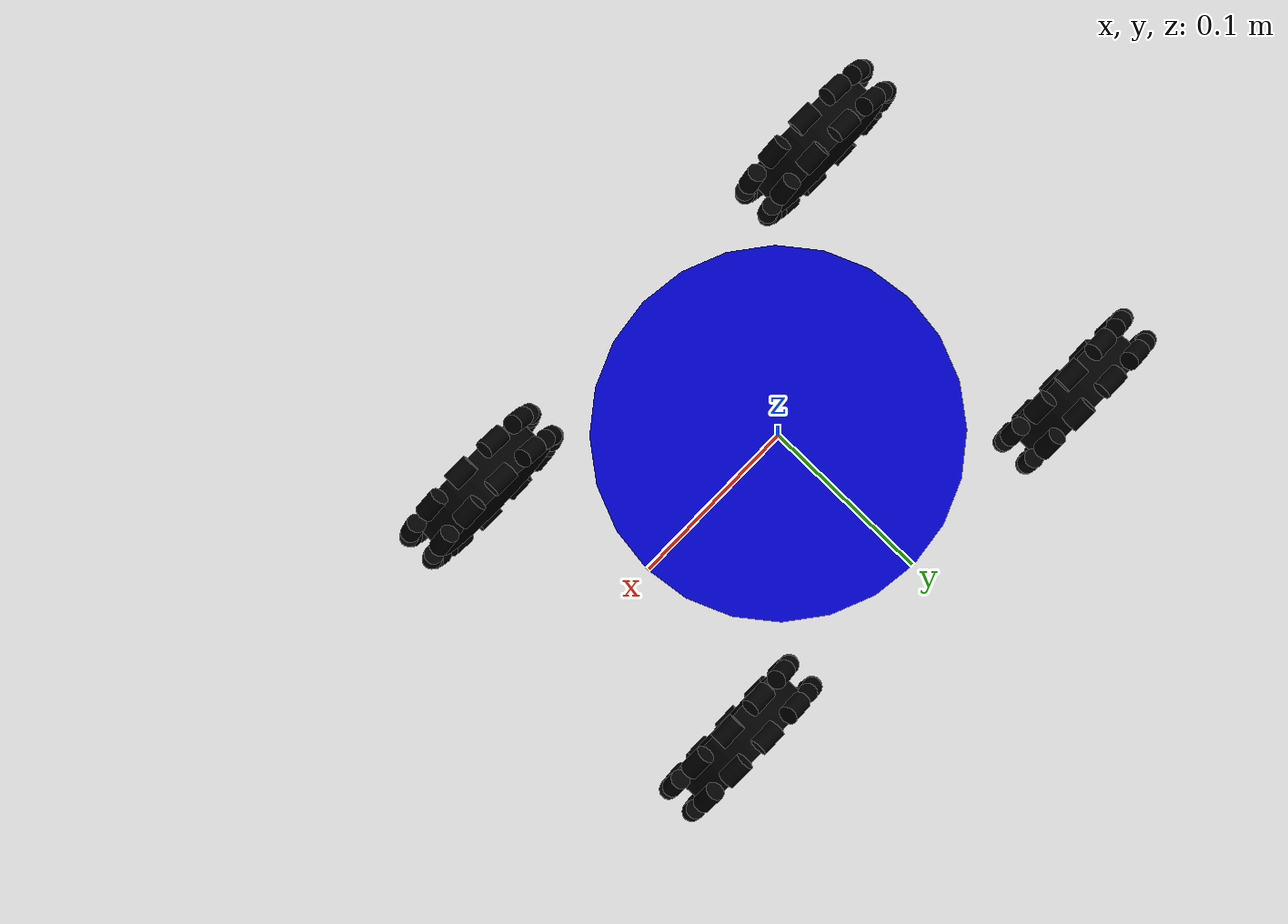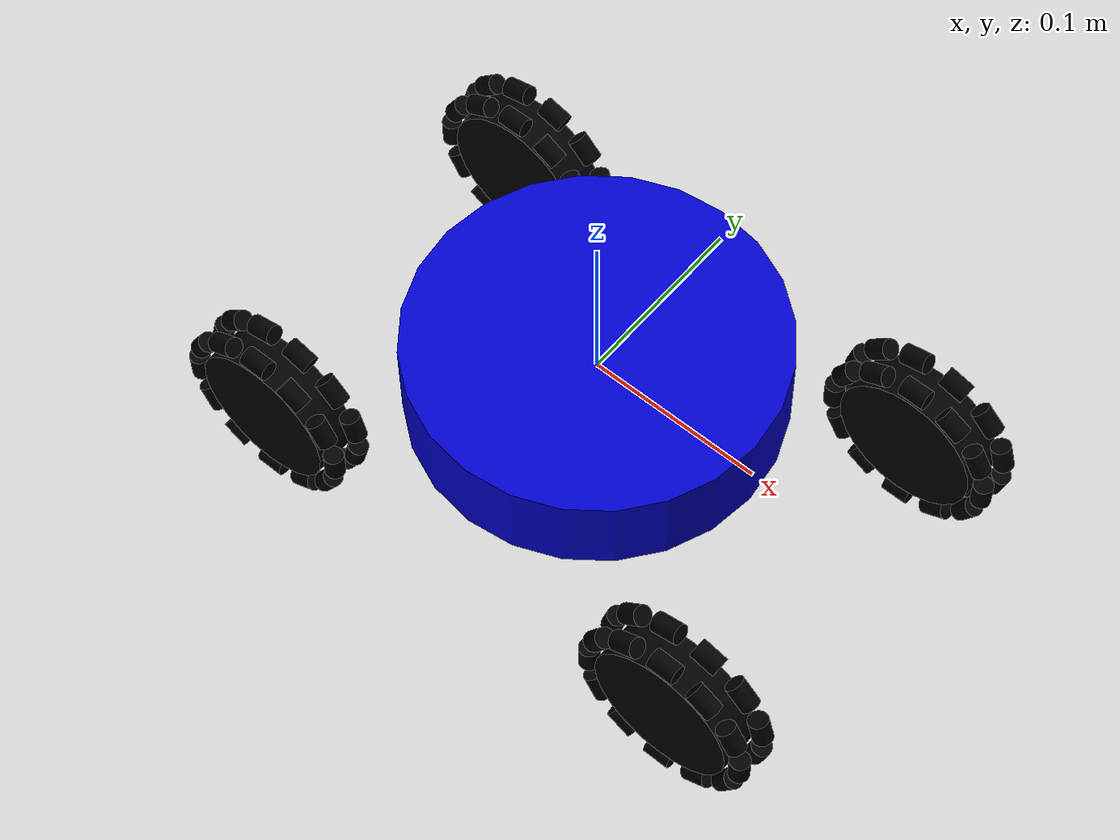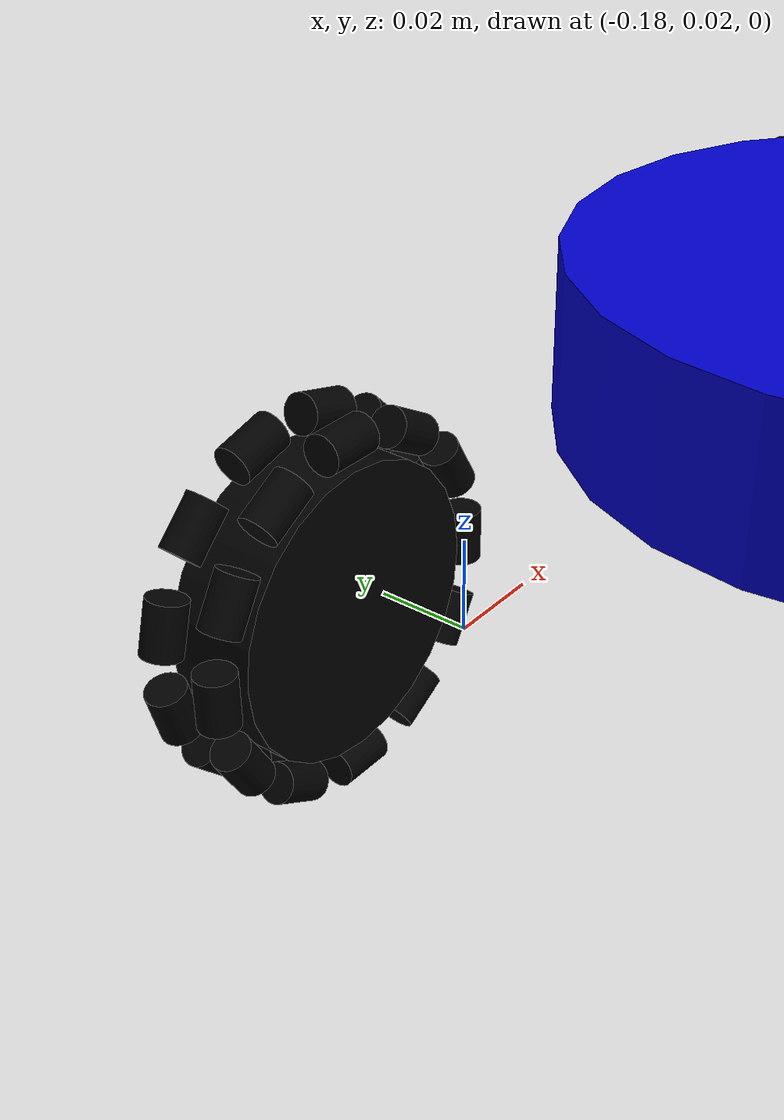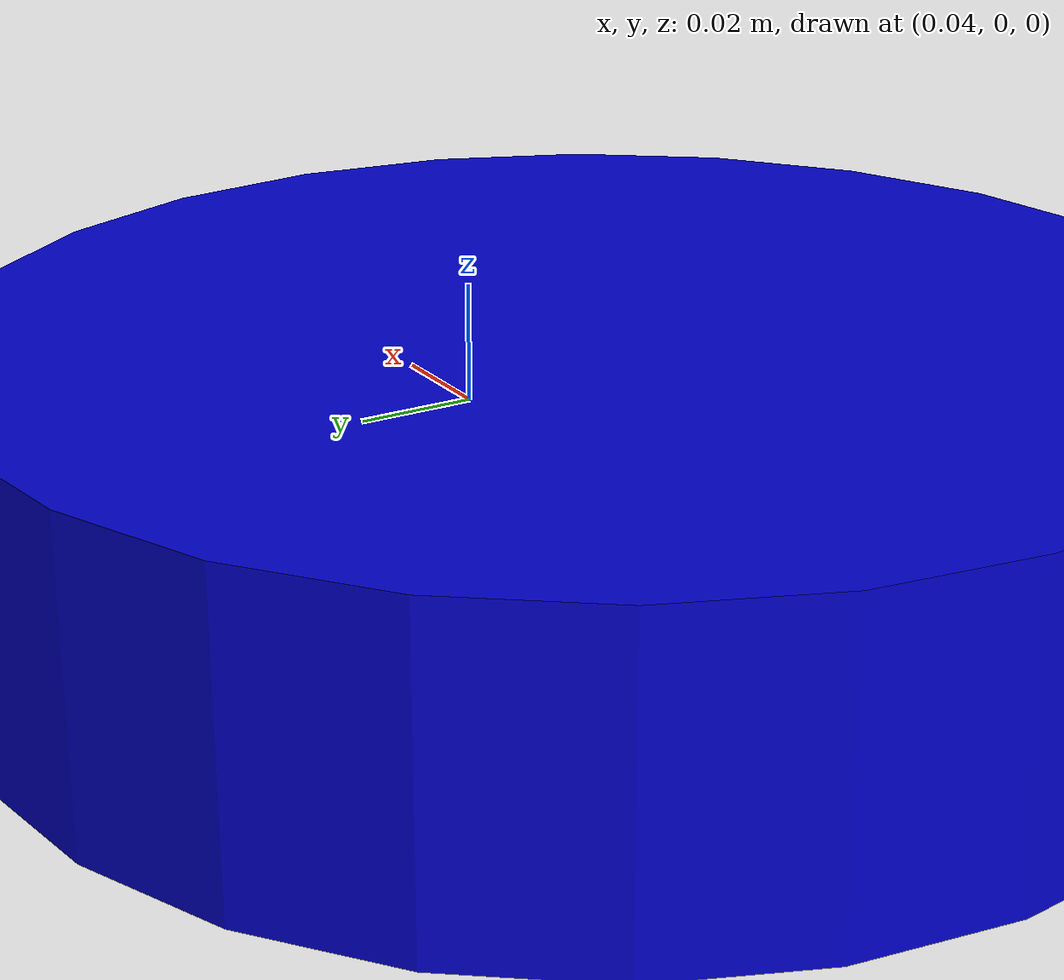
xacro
<?xml version="1.0"?>
<robot name="chassis" xmlns:xacro="http://ros.org/wiki/xacro">

    <xacro:property name="width" value="0.1" />
    <xacro:property name="leglen" value="0.05" />
    <xacro:property name="bodylen" value="0.05" />
    <xacro:property name="baselen" value="0.4" />
    <xacro:property name="wheeldiam" value="0.082" />
    <xacro:property name="pi" value="3.1415" />

    <xacro:property name="wheel_radius" value="0.04" />
    <xacro:property name="wheel_width" value="0.025" />

    <xacro:property name="xyz" value="0 0 0"/>
    <xacro:property name="rpy" value="0 0 0"/>
    <xacro:property name="wheel_xyz" value="0 0 0"/>
    <xacro:property name="wheel_rpy" value="0 0 0"/>
    <xacro:property name="roller_xyz" value="0 .008 -.0465"/>
    <xacro:property name="roller_rpy" value="0 ${-pi/12} 0"/>

    <xacro:property name="roller_diameter" value="0.0055" />
    <xacro:property name="roller_width" value="0.015" />

    <xacro:property name="roller_side_length" value="0.0088"/>
    <xacro:property name="roller_radius" value=".0475"/>

    <material name="blue">
        <color rgba="0 0 0.8 1"/>
    </material>

    <material name="black">
        <color rgba="0 0 0 1"/>
    </material>

    <material name="white">
        <color rgba="1 1 1 1"/>
    </material>

    <xacro:macro name="chassis_inertial" params="mass">
        <inertial>
            <mass value="${mass}" />
            <inertia ixx="0.5" ixy="0.0" ixz="0.0" iyy="0.3" iyz="0.0" izz="0.5" />
        </inertial>
    </xacro:macro>

    <xacro:macro name="roller_inertial" params="mass">
        <inertial>
            <mass value="${mass}" />
            <inertia ixx="0.00001" ixy="0.0" ixz="0.0" iyy="0.00001" iyz="0.0" izz="0.00001" />
        </inertial>
    </xacro:macro>

    <link name="chassis_link">
        <visual>
            <origin xyz="0 0 0" rpy="0 0 0" />
            <geometry>
                <cylinder radius="${width}" length="${bodylen}"/>
            </geometry>
            <material name="blue"/>
        </visual>
        <collision>
            <origin xyz="0 0 0" rpy="0 0 0" />
            <geometry>
                <cylinder radius="${width}" length="${bodylen}"/>
            </geometry>
        </collision>
        <xacro:chassis_inertial mass="10"/>
    </link>

    <xacro:macro name="roller" params="prefix suffix theta side">
        <link name="${prefix}_${suffix}_roller">
            <visual>
                <origin xyz="0 0 0" rpy="0 ${pi/2} 0" />
                <geometry>
                    <cylinder radius="${roller_diameter}" length="${roller_width}"/>
                </geometry>
                <material name="black"/>
            </visual>
            <collision>
                <origin xyz="0 0 0" rpy="0 ${pi/2} 0" />
                <geometry>
                    <cylinder radius="${roller_diameter}" length="${roller_width}"/>
                </geometry>
            </collision>
            <xacro:roller_inertial mass="0.001"/>
        </link>
        <joint name="${prefix}_${suffix}_roller_joint" type="continuous">
            <axis xyz="1 0 0" />
            <parent link="${prefix}_wheel"/>
            <child link="${prefix}_${suffix}_roller"/>
            <origin xyz="${sin(theta)*roller_radius} ${roller_side_length*side} ${cos(theta)*roller_radius}" rpy="0 ${theta} 0"/>
            <dynamics damping="0.0001" />
        </joint>
        <!-- This block provides the simulator (Gazebo) with information on a few additional
        physical properties. See http://gazebosim.org/tutorials/?tut=ros_urdf for more-->
        <gazebo reference="${prefix}_${suffix}_roller">
            <mu1 value="2000.0"/>
            <mu2 value="1000.0"/>
            <kp value="10000000.0" />
            <kd value="1.0" />
            <material>Gazebo/Grey</material>
        </gazebo>

        <!-- This block connects the wheel joint to an actuator (motor), which informs both
        simulation and visualization of the robot -->
    </xacro:macro>

    <xacro:macro name="wheel" params="prefix suffix reflect reflectX">
        <link name="${prefix}_${suffix}_wheel">
            <visual>
                <origin xyz="0 0 0" rpy="${pi/2} 0 0" />
                <geometry>
                    <cylinder radius="${wheeldiam/2}" length="${wheel_width}"/>
                </geometry>
                <material name="black"/>
            </visual>
            <collision>
                <origin xyz="0 0 0" rpy="${pi/2} 0 0" />
                <geometry>
                    <cylinder radius="${wheeldiam/2}" length="${wheel_width}"/>
                </geometry>
            </collision>
            <xacro:roller_inertial mass="0.001"/>
        </link>

        <joint name="${prefix}_${suffix}_wheel_joint" type="continuous">
            <axis xyz="0 1 0" />
            <parent link="chassis_link"/>
            <child link="${prefix}_${suffix}_wheel"/>
            <origin xyz="${baselen*reflect/3} ${.1*reflectX} -.05" rpy="0 0 0"/>
        </joint>

        <!-- This block provides the simulator (Gazebo) with information on a few additional
        physical properties. See http://gazebosim.org/tutorials/?tut=ros_urdf for more-->
        <gazebo reference="${prefix}_${suffix}_wheel">
            <mu1 value="200.0"/>
            <mu2 value="100.0"/>
            <kp value="10000000.0" />
            <kd value="1.0" />
            <material>Gazebo/Green</material>
        </gazebo>

        <!-- This block connects the wheel joint to an actuator (motor), which informs both
        simulation and visualization of the robot -->
        <transmission name="${prefix}_${suffix}_wheel_trans">
            <type>transmission_interface/SimpleTransmission</type>
            <actuator name="${prefix}_${suffix}_wheel_motor">
                <mechanicalReduction>1</mechanicalReduction>
            </actuator>
            <joint name="${prefix}_${suffix}_wheel_joint">
                <hardwareInterface>VelocityJointInterface</hardwareInterface>
            </joint>
        </transmission>

        <xacro:roller prefix="${prefix}_${suffix}" suffix="right_one" theta="${pi * ( 1/6)}" side="-1"/>
        <xacro:roller prefix="${prefix}_${suffix}" suffix="right_two" theta="${pi * ( 2/6)}" side="-1"/>
        <xacro:roller prefix="${prefix}_${suffix}" suffix="right_thr" theta="${pi * ( 3/6)}" side="-1"/>
        <xacro:roller prefix="${prefix}_${suffix}" suffix="right_for" theta="${pi * ( 4/6)}" side="-1"/>
        <xacro:roller prefix="${prefix}_${suffix}" suffix="right_fve" theta="${pi * ( 5/6)}" side="-1"/>
        <xacro:roller prefix="${prefix}_${suffix}" suffix="right_six" theta="${pi * ( 6/6)}" side="-1"/>
        <xacro:roller prefix="${prefix}_${suffix}" suffix="right_svn" theta="${pi * ( 7/6)}" side="-1"/>
        <xacro:roller prefix="${prefix}_${suffix}" suffix="right_ate" theta="${pi * ( 8/6)}" side="-1"/>
        <xacro:roller prefix="${prefix}_${suffix}" suffix="right_nne" theta="${pi * ( 9/6)}" side="-1"/>
        <xacro:roller prefix="${prefix}_${suffix}" suffix="right_ten" theta="${pi * (10/6)}" side="-1"/>
        <xacro:roller prefix="${prefix}_${suffix}" suffix="right_lvn" theta="${pi * (11/6)}" side="-1"/>
        <xacro:roller prefix="${prefix}_${suffix}" suffix="right_wlv" theta="${pi * (12/6)}" side="-1"/>
        <xacro:roller prefix="${prefix}_${suffix}" suffix="left_one" theta="${pi * ( 1/6) + ( pi / 12 )}" side="1"/>
        <xacro:roller prefix="${prefix}_${suffix}" suffix="left_two" theta="${pi * ( 2/6) + ( pi / 12 )}" side="1"/>
        <xacro:roller prefix="${prefix}_${suffix}" suffix="left_thr" theta="${pi * ( 3/6) + ( pi / 12 )}" side="1"/>
        <xacro:roller prefix="${prefix}_${suffix}" suffix="left_for" theta="${pi * ( 4/6) + ( pi / 12 )}" side="1"/>
        <xacro:roller prefix="${prefix}_${suffix}" suffix="left_fve" theta="${pi * ( 5/6) + ( pi / 12 )}" side="1"/>
        <xacro:roller prefix="${prefix}_${suffix}" suffix="left_six" theta="${pi * ( 6/6) + ( pi / 12 )}" side="1"/>
        <xacro:roller prefix="${prefix}_${suffix}" suffix="left_svn" theta="${pi * ( 7/6) + ( pi / 12 )}" side="1"/>
        <xacro:roller prefix="${prefix}_${suffix}" suffix="left_ate" theta="${pi * ( 8/6) + ( pi / 12 )}" side="1"/>
        <xacro:roller prefix="${prefix}_${suffix}" suffix="left_nne" theta="${pi * ( 9/6) + ( pi / 12 )}" side="1"/>
        <xacro:roller prefix="${prefix}_${suffix}" suffix="left_ten" theta="${pi * (10/6) + ( pi / 12 )}" side="1"/>
        <xacro:roller prefix="${prefix}_${suffix}" suffix="left_lvn" theta="${pi * (11/6) + ( pi / 12 )}" side="1"/>
        <xacro:roller prefix="${prefix}_${suffix}" suffix="left_wlv" theta="${pi * (12/6) + ( pi / 12 )}" side="1"/>

    </xacro:macro>

    <xacro:wheel prefix="left" suffix="front"  reflect= "1" reflectX="1"/>
    <xacro:wheel prefix="left" suffix="back"   reflect="-1" reflectX="1"/>
    <xacro:wheel prefix="right" suffix="front" reflect= "1" reflectX= "-1"/>
    <xacro:wheel prefix="right" suffix="back"  reflect="-1" reflectX= "-1"/>

    <!-- Gazebo plugin for ROS Control -->
    <gazebo>
        <plugin name="gazebo_ros_control" filename="libgazebo_ros_control.so">
            <robotNamespace>/</robotNamespace>
        </plugin>
        <plugin name="p3d_base_controller" filename="libgazebo_ros_p3d.so">
          <alwaysOn>true</alwaysOn>
          <updateRate>50.0</updateRate>
          <bodyName>chassis_link</bodyName>
          <topicName>ground_truth/state</topicName>
          <gaussianNoise>0.01</gaussianNoise>
          <frameName>world</frameName>
          <xyzOffsets>0 0 0</xyzOffsets>
          <rpyOffsets>0 0 0</rpyOffsets>
        </plugin>
    </gazebo>
</robot>
